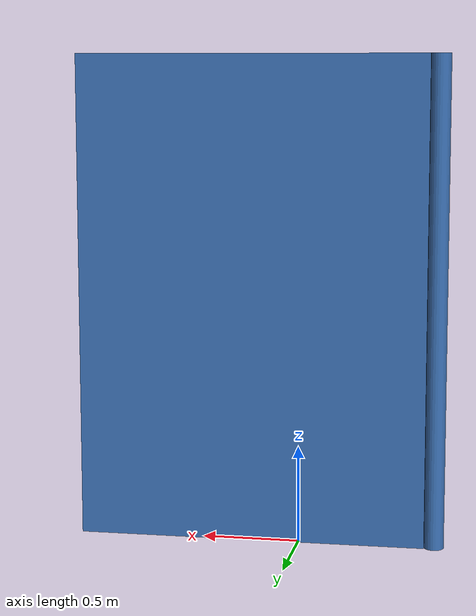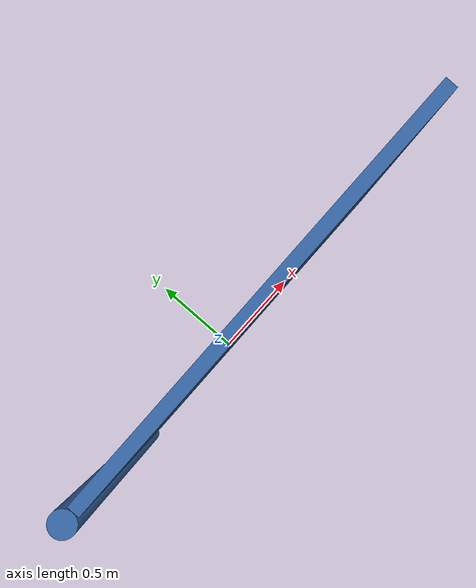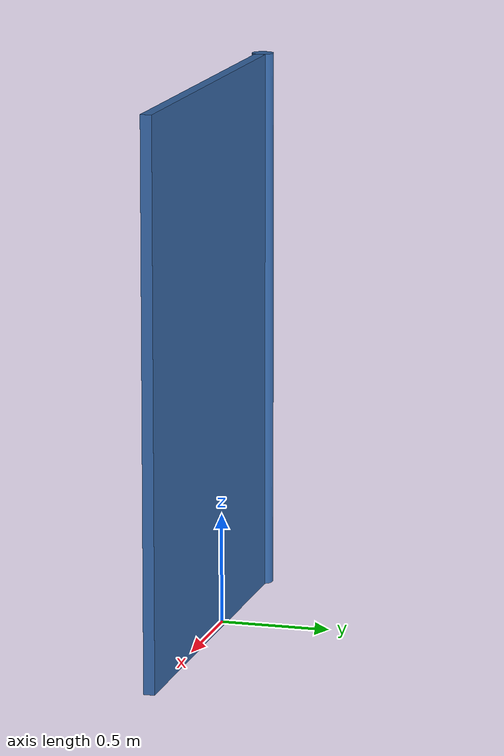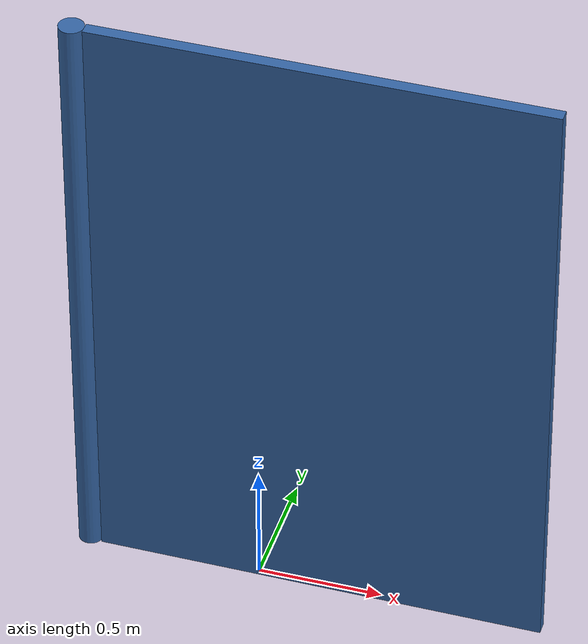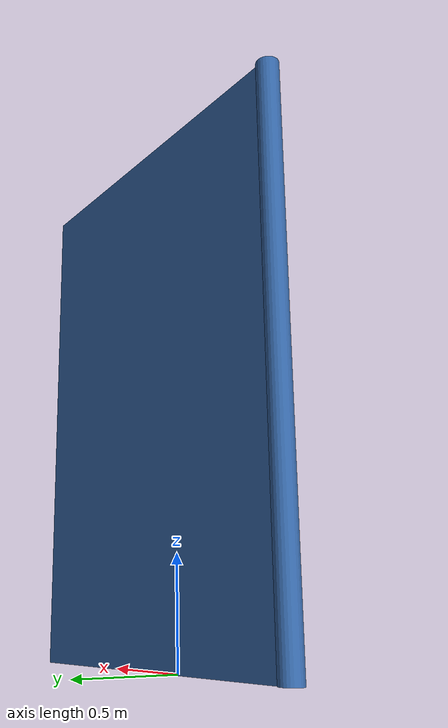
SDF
<?xml version='1.0'?>
<sdf version='1.6'>
  <model name='hinge_door_1.8'>
    <link name='link_0'>
      <inertial>
        <mass>0.11</mass>
        <inertia>
          <ixx>0.0366896</ixx>
          <ixy>0</ixy>
          <ixz>0</ixz>
          <iyy>0.0477583</iyy>
          <iyz>0</iyz>
          <izz>0.0111146</izz>
        </inertia>
        <pose frame=''>0 0 0 0 -0 0</pose>
      </inertial>
      <pose frame=''>0.25 0 1.25 0 -0 0</pose>
      <gravity>1</gravity>
      <self_collide>0</self_collide>
      <kinematic>0</kinematic>
      <enable_wind>0</enable_wind>
      <visual name='visual'>
        <pose frame=''>0 0 0 0 -0 0</pose>
        <geometry>
          <box>
            <size>1.8 0.05 2.5</size>
          </box>
        </geometry>
        <material>
          <lighting>1</lighting>
          <script>
            <uri>file://media/materials/scripts/gazebo.material</uri>
            <name>Gazebo/Grey</name>
          </script>
          <shader type='pixel'>
            <normal_map>__default__</normal_map>
          </shader>
          <ambient>0.204 0.396 0.643 1</ambient>
          <diffuse>0.7 0.7 0.7 1</diffuse>
          <specular>0.01 0.01 0.01 1</specular>
          <emissive>0 0 0 1</emissive>
        </material>
        <transparency>0</transparency>
        <cast_shadows>1</cast_shadows>
      </visual>
      <collision name='collision'>
        <laser_retro>0</laser_retro>
        <max_contacts>10</max_contacts>
        <pose frame=''>0 0 0 0 -0 0</pose>
        <geometry>
          <box>
            <size>1.8 0.05 2.5</size>
          </box>
        </geometry>
        <surface>
          <friction>
            <ode>
              <mu>1</mu>
              <mu2>1</mu2>
              <fdir1>0 0 0</fdir1>
              <slip1>0</slip1>
              <slip2>0</slip2>
            </ode>
            <torsional>
              <coefficient>1</coefficient>
              <patch_radius>0</patch_radius>
              <surface_radius>0</surface_radius>
              <use_patch_radius>1</use_patch_radius>
              <ode>
                <slip>0</slip>
              </ode>
            </torsional>
          </friction>
          <bounce>
            <restitution_coefficient>0</restitution_coefficient>
            <threshold>1e+06</threshold>
          </bounce>
          <contact>
            <collide_without_contact>0</collide_without_contact>
            <collide_without_contact_bitmask>1</collide_without_contact_bitmask>
            <collide_bitmask>1</collide_bitmask>
            <ode>
              <soft_cfm>0</soft_cfm>
              <soft_erp>0.2</soft_erp>
              <kp>1e+13</kp>
              <kd>1</kd>
              <max_vel>0.01</max_vel>
              <min_depth>0</min_depth>
            </ode>
            <bullet>
              <split_impulse>1</split_impulse>
              <split_impulse_penetration_threshold>-0.01</split_impulse_penetration_threshold>
              <soft_cfm>0</soft_cfm>
              <soft_erp>0.2</soft_erp>
              <kp>1e+13</kp>
              <kd>1</kd>
            </bullet>
          </contact>
        </surface>
      </collision>
    </link>
    <link name='link_1'>
      <inertial>
        <mass>10.9956</mass>
        <inertia>
          <ixx>3.67206</ixx>
          <ixy>0</ixy>
          <ixz>0</ixz>
          <iyy>3.67206</iyy>
          <iyz>0</iyz>
          <izz>0.0137445</izz>
        </inertia>
        <pose frame=''>0 0 0 0 -0 0</pose>
      </inertial>
      <pose frame=''>-0.7 0 1.25 0 -0 0</pose>
      <gravity>1</gravity>
      <self_collide>0</self_collide>
      <kinematic>0</kinematic>
      <enable_wind>0</enable_wind>
      <visual name='visual'>
        <pose frame=''>0 0 0 0 -0 0</pose>
        <geometry>
          <cylinder>
            <radius>0.05</radius>
            <length>2.5</length>
          </cylinder>
        </geometry>
        <material>
          <lighting>1</lighting>
          <script>
            <uri>file://media/materials/scripts/gazebo.material</uri>
            <name>Gazebo/Grey</name>
          </script>
          <shader type='pixel'>
            <normal_map>__default__</normal_map>
          </shader>
          <ambient>0.204 0.396 0.643 1</ambient>
          <diffuse>0.7 0.7 0.7 1</diffuse>
          <specular>0.01 0.01 0.01 1</specular>
          <emissive>0 0 0 1</emissive>
        </material>
        <transparency>0</transparency>
        <cast_shadows>1</cast_shadows>
      </visual>
      <collision name='collision'>
        <laser_retro>0</laser_retro>
        <max_contacts>10</max_contacts>
        <pose frame=''>0 0 0 0 -0 0</pose>
        <geometry>
          <cylinder>
            <radius>0.05</radius>
            <length>2.5</length>
          </cylinder>
        </geometry>
        <surface>
          <friction>
            <ode>
              <mu>1</mu>
              <mu2>1</mu2>
              <fdir1>0 0 0</fdir1>
              <slip1>0</slip1>
              <slip2>0</slip2>
            </ode>
            <torsional>
              <coefficient>1</coefficient>
              <patch_radius>0</patch_radius>
              <surface_radius>0</surface_radius>
              <use_patch_radius>1</use_patch_radius>
              <ode>
                <slip>0</slip>
              </ode>
            </torsional>
          </friction>
          <bounce>
            <restitution_coefficient>0</restitution_coefficient>
            <threshold>1e+06</threshold>
          </bounce>
          <contact>
            <collide_without_contact>0</collide_without_contact>
            <collide_without_contact_bitmask>1</collide_without_contact_bitmask>
            <collide_bitmask>1</collide_bitmask>
            <ode>
              <soft_cfm>0</soft_cfm>
              <soft_erp>0.2</soft_erp>
              <kp>1e+13</kp>
              <kd>1</kd>
              <max_vel>0.01</max_vel>
              <min_depth>0</min_depth>
            </ode>
            <bullet>
              <split_impulse>1</split_impulse>
              <split_impulse_penetration_threshold>-0.01</split_impulse_penetration_threshold>
              <soft_cfm>0</soft_cfm>
              <soft_erp>0.2</soft_erp>
              <kp>1e+13</kp>
              <kd>1</kd>
            </bullet>
          </contact>
        </surface>
      </collision>
    </link>
    <joint name='hinge' type='revolute'>
      <parent>link_1</parent>
      <child>link_0</child>
      <pose frame=''>-0.95 0 0 0 -0 0</pose>
      <axis>
        <xyz>0 0 1</xyz>
        <use_parent_model_frame>0</use_parent_model_frame>
        <limit>
          <lower>-1.79769e+308</lower>
          <upper>1.79769e+308</upper>
          <effort>-1</effort>
          <velocity>-1</velocity>
        </limit>
        <dynamics>
          <spring_reference>0</spring_reference>
          <spring_stiffness>0</spring_stiffness>
          <damping>1</damping>
          <friction>1</friction>
        </dynamics>
      </axis>
      <physics>
        <ode>
          <limit>
            <cfm>0</cfm>
            <erp>0.2</erp>
          </limit>
          <suspension>
            <cfm>0</cfm>
            <erp>0.2</erp>
          </suspension>
        </ode>
      </physics>
    </joint>

    <joint name='floor_link' type='fixed'>
      <child>link_1</child>
      <parent>world</parent>
      <axis>
        <xyz>0 0 1</xyz>
        <dynamics/>
      </axis>
    </joint>
    <allow_auto_disable>1</allow_auto_disable>
  </model>
</sdf>
